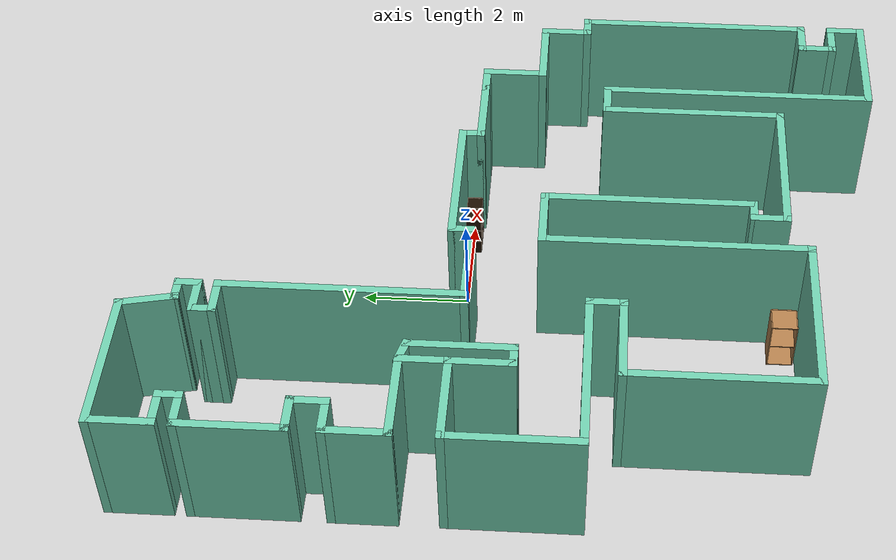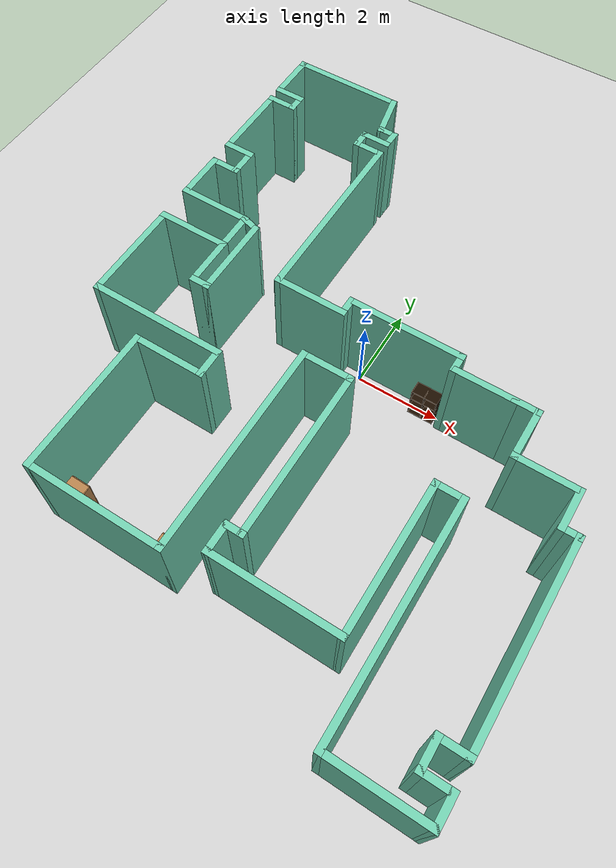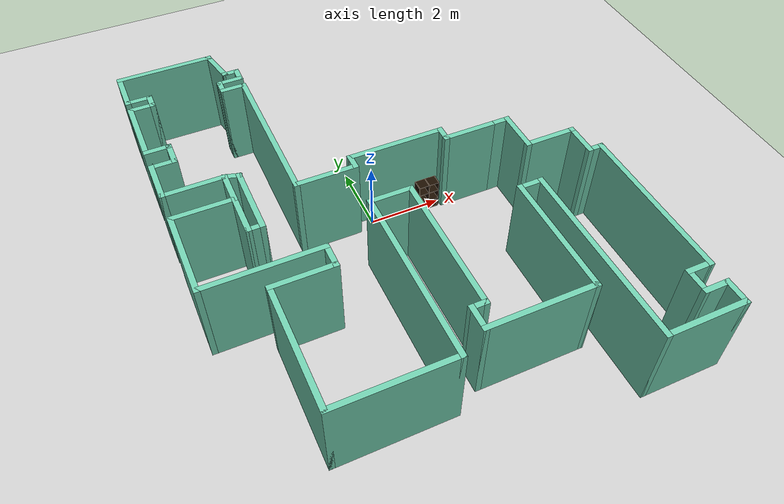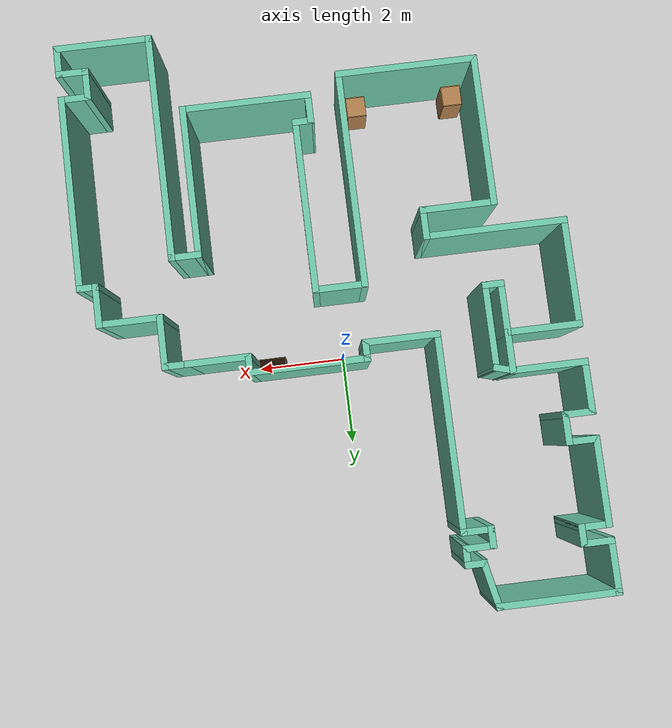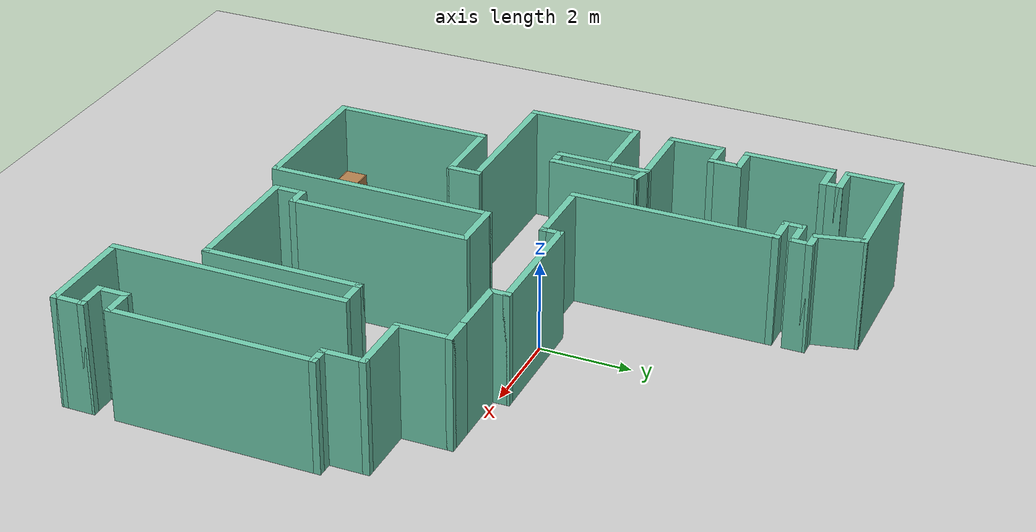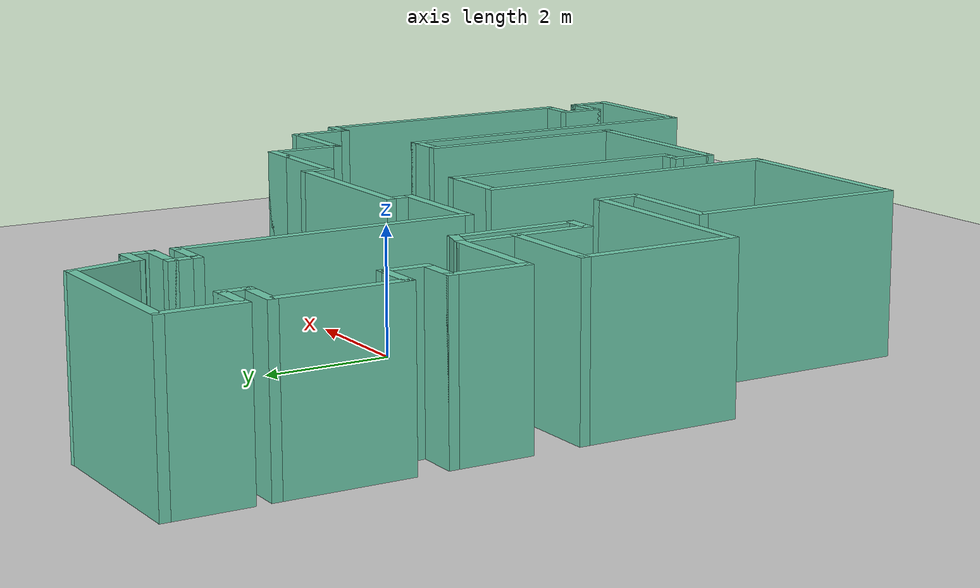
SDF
<sdf version="1.6">
 <world name="default">
  <light name="sun" type="directional">
   <pose>0 0 10 0 -0 0</pose>
   <diffuse>0.8 0.8 0.8 1</diffuse>
   <specular>0.2 0.2 0.2 1</specular>
   <attenuation>
    <range>1000</range>
    <constant>0.9</constant>
    <linear>0.01</linear>
    <quadratic>0.001</quadratic>
   </attenuation>
   <direction>-0.5 0.1 -0.9</direction>
  </light>
  <model name="ground_plane">
   <static>1</static>
   <link name="link">
    <collision name="collision">
     <geometry><plane><normal>0 0 1</normal><size>100 100</size></plane></geometry>
     <surface>
      <contact><collide_bitmask>65535</collide_bitmask></contact>
      <friction><ode><mu>100</mu><mu2>50</mu2></ode></friction>
     </surface>
    </collision>
    <visual name="visual">
     <cast_shadows>0</cast_shadows>
     <geometry><plane><normal>0 0 1</normal><size>100 100</size></plane></geometry>
     <material>
      <script><uri>file://media/materials/scripts/gazebo.material</uri><name>Gazebo/Grey</name></script>
     </material>
    </visual>
   </link>
  </model>
  <gravity>0 0 -9.8</gravity>
  <magnetic_field>6e-06 2.3e-05 -4.2e-05</magnetic_field>
  <atmosphere type="adiabatic"/>
  <physics name="default_physics" default="0" type="ode">
   <max_step_size>0.001</max_step_size>
   <real_time_factor>1</real_time_factor>
   <real_time_update_rate>1000</real_time_update_rate>
  </physics>
  <scene><ambient>0.4 0.4 0.4 1</ambient><background>0.7 0.7 0.7 1</background><shadows>1</shadows></scene>
  <audio><device>default</device></audio>
  <spherical_coordinates>
   <surface_model>EARTH_WGS84</surface_model>
   <latitude_deg>0</latitude_deg>
   <longitude_deg>0</longitude_deg>
   <elevation>0</elevation>
   <heading_deg>0</heading_deg>
  </spherical_coordinates>
  <model name="map_79">
   <pose>0.209254 -0.878688 0 0 -0 0</pose>
   <link name="Wall_0">
    <collision name="Wall_0_Collision">
     <geometry><box><size>2.75 0.15 2.5</size></box></geometry>
     <pose>0 0 1.25 0 -0 0</pose>
    </collision>
    <visual name="Wall_0_Visual">
     <pose>0 0 1.25 0 -0 0</pose>
     <geometry><box><size>2.75 0.15 2.5</size></box></geometry>
     <material>
      <script><uri>file://media/materials/scripts/gazebo.material</uri><name>Gazebo/Grey</name></script>
      <ambient>0.435294 0.796078 0.67451 1</ambient>
     </material>
     <meta><layer>0</layer></meta>
    </visual>
    <pose>-4.15 6.74308 0 0 -0 3.14159</pose>
   </link>
   <link name="Wall_1">
    <collision name="Wall_1_Collision">
     <geometry><box><size>1.25 0.15 2.5</size></box></geometry>
     <pose>0 0 1.25 0 -0 0</pose>
    </collision>
    <visual name="Wall_1_Visual">
     <pose>0 0 1.25 0 -0 0</pose>
     <geometry><box><size>1.25 0.15 2.5</size></box></geometry>
     <material>
      <script><uri>file://media/materials/scripts/gazebo.material</uri><name>Gazebo/Grey</name></script>
      <ambient>0.435294 0.796078 0.67451 1</ambient>
     </material>
     <meta><layer>0</layer></meta>
    </visual>
    <pose>-5.45 6.19308 0 0 -0 -1.5708</pose>
   </link>
   <link name="Wall_10">
    <collision name="Wall_10_Collision">
     <geometry><box><size>1.75 0.15 2.5</size></box></geometry>
     <pose>0 0 1.25 0 -0 0</pose>
    </collision>
    <visual name="Wall_10_Visual">
     <pose>0 0 1.25 0 -0 0</pose>
     <geometry><box><size>1.75 0.15 2.5</size></box></geometry>
     <material>
      <script><uri>file://media/materials/scripts/gazebo.material</uri><name>Gazebo/Grey</name></script>
      <ambient>0.435294 0.796078 0.67451 1</ambient>
     </material>
     <meta><layer>0</layer></meta>
    </visual>
    <pose>-4.65 1.74308 0 0 -0 0</pose>
   </link>
   <link name="Wall_11">
    <collision name="Wall_11_Collision">
     <geometry><box><size>1 0.15 2.5</size></box></geometry>
     <pose>0 0 1.25 0 -0 0</pose>
    </collision>
    <visual name="Wall_11_Visual">
     <pose>0 0 1.25 0 -0 0</pose>
     <geometry><box><size>1 0.15 2.5</size></box></geometry>
     <material>
      <script><uri>file://media/materials/scripts/gazebo.material</uri><name>Gazebo/Grey</name></script>
      <ambient>0.435294 0.796078 0.67451 1</ambient>
     </material>
     <meta><layer>0</layer></meta>
    </visual>
    <pose>-3.85 1.31808 0 0 -0 -1.5708</pose>
   </link>
   <link name="Wall_12">
    <collision name="Wall_12_Collision">
     <geometry><box><size>1.75 0.15 2.5</size></box></geometry>
     <pose>0 0 1.25 0 -0 0</pose>
    </collision>
    <visual name="Wall_12_Visual">
     <pose>0 0 1.25 0 -0 0</pose>
     <geometry><box><size>1.75 0.15 2.5</size></box></geometry>
     <material>
      <script><uri>file://media/materials/scripts/gazebo.material</uri><name>Gazebo/Grey</name></script>
      <ambient>0.435294 0.796078 0.67451 1</ambient>
     </material>
     <meta><layer>0</layer></meta>
    </visual>
    <pose>-4.65 0.893079 0 0 -0 3.14159</pose>
   </link>
   <link name="Wall_13">
    <collision name="Wall_13_Collision">
     <geometry><box><size>2.5 0.15 2.5</size></box></geometry>
     <pose>0 0 1.25 0 -0 0</pose>
    </collision>
    <visual name="Wall_13_Visual">
     <pose>0 0 1.25 0 -0 0</pose>
     <geometry><box><size>2.5 0.15 2.5</size></box></geometry>
     <material>
      <script><uri>file://media/materials/scripts/gazebo.material</uri><name>Gazebo/Grey</name></script>
      <ambient>0.435294 0.796078 0.67451 1</ambient>
     </material>
     <meta><layer>0</layer></meta>
    </visual>
    <pose>-5.45 -0.281921 0 0 -0 -1.5708</pose>
   </link>
   <link name="Wall_14">
    <collision name="Wall_14_Collision">
     <geometry><box><size>3.25 0.15 2.5</size></box></geometry>
     <pose>0 0 1.25 0 -0 0</pose>
    </collision>
    <visual name="Wall_14_Visual">
     <pose>0 0 1.25 0 -0 0</pose>
     <geometry><box><size>3.25 0.15 2.5</size></box></geometry>
     <material>
      <script><uri>file://media/materials/scripts/gazebo.material</uri><name>Gazebo/Grey</name></script>
      <ambient>0.435294 0.796078 0.67451 1</ambient>
     </material>
     <meta><layer>0</layer></meta>
    </visual>
    <pose>-3.9 -1.45692 0 0 -0 0</pose>
   </link>
   <link name="Wall_15">
    <collision name="Wall_15_Collision">
     <geometry><box><size>0.75 0.15 2.5</size></box></geometry>
     <pose>0 0 1.25 0 -0 0</pose>
    </collision>
    <visual name="Wall_15_Visual">
     <pose>0 0 1.25 0 -0 0</pose>
     <geometry><box><size>0.75 0.15 2.5</size></box></geometry>
     <material>
      <script><uri>file://media/materials/scripts/gazebo.material</uri><name>Gazebo/Grey</name></script>
      <ambient>0.435294 0.796078 0.67451 1</ambient>
     </material>
     <meta><layer>0</layer></meta>
    </visual>
    <pose>-2.35 -1.75692 0 0 -0 -1.5708</pose>
   </link>
   <link name="Wall_16">
    <collision name="Wall_16_Collision">
     <geometry><box><size>1.75 0.15 2.5</size></box></geometry>
     <pose>0 0 1.25 0 -0 0</pose>
    </collision>
    <visual name="Wall_16_Visual">
     <pose>0 0 1.25 0 -0 0</pose>
     <geometry><box><size>1.75 0.15 2.5</size></box></geometry>
     <material>
      <script><uri>file://media/materials/scripts/gazebo.material</uri><name>Gazebo/Grey</name></script>
      <ambient>0.435294 0.796078 0.67451 1</ambient>
     </material>
     <meta><layer>0</layer></meta>
    </visual>
    <pose>-3.15 -2.05692 0 0 -0 3.14159</pose>
   </link>
   <link name="Wall_17">
    <collision name="Wall_17_Collision">
     <geometry><box><size>3.5 0.15 2.5</size></box></geometry>
     <pose>0 0 1.25 0 -0 0</pose>
    </collision>
    <visual name="Wall_17_Visual">
     <pose>0 0 1.25 0 -0 0</pose>
     <geometry><box><size>3.5 0.15 2.5</size></box></geometry>
     <material>
      <script><uri>file://media/materials/scripts/gazebo.material</uri><name>Gazebo/Grey</name></script>
      <ambient>0.435294 0.796078 0.67451 1</ambient>
     </material>
     <meta><layer>0</layer></meta>
    </visual>
    <pose>-3.95 -3.73192 0 0 -0 -1.5708</pose>
   </link>
   <link name="Wall_18">
    <collision name="Wall_18_Collision">
     <geometry><box><size>3.25 0.15 2.5</size></box></geometry>
     <pose>0 0 1.25 0 -0 0</pose>
    </collision>
    <visual name="Wall_18_Visual">
     <pose>0 0 1.25 0 -0 0</pose>
     <geometry><box><size>3.25 0.15 2.5</size></box></geometry>
     <material>
      <script><uri>file://media/materials/scripts/gazebo.material</uri><name>Gazebo/Grey</name></script>
      <ambient>0.435294 0.796078 0.67451 1</ambient>
     </material>
     <meta><layer>0</layer></meta>
    </visual>
    <pose>-2.4 -5.40692 0 0 -0 0</pose>
   </link>
   <link name="Wall_19">
    <collision name="Wall_19_Collision">
     <geometry><box><size>5 0.15 2.5</size></box></geometry>
     <pose>0 0 1.25 0 -0 0</pose>
    </collision>
    <visual name="Wall_19_Visual">
     <pose>0 0 1.25 0 -0 0</pose>
     <geometry><box><size>5 0.15 2.5</size></box></geometry>
     <material>
      <script><uri>file://media/materials/scripts/gazebo.material</uri><name>Gazebo/Grey</name></script>
      <ambient>0.435294 0.796078 0.67451 1</ambient>
     </material>
     <meta><layer>0</layer></meta>
    </visual>
    <pose>-0.85 -2.98192 0 0 -0 1.5708</pose>
   </link>
   <link name="Wall_2">
    <collision name="Wall_2_Collision">
     <geometry><box><size>0.75 0.15 2.5</size></box></geometry>
     <pose>0 0 1.25 0 -0 0</pose>
    </collision>
    <visual name="Wall_2_Visual">
     <pose>0 0 1.25 0 -0 0</pose>
     <geometry><box><size>0.75 0.15 2.5</size></box></geometry>
     <material>
      <script><uri>file://media/materials/scripts/gazebo.material</uri><name>Gazebo/Grey</name></script>
      <ambient>0.435294 0.796078 0.67451 1</ambient>
     </material>
     <meta><layer>0</layer></meta>
    </visual>
    <pose>-5.15 5.64308 0 0 -0 0</pose>
   </link>
   <link name="Wall_20">
    <collision name="Wall_20_Collision">
     <geometry><box><size>1.25 0.15 2.5</size></box></geometry>
     <pose>0 0 1.25 0 -0 0</pose>
    </collision>
    <visual name="Wall_20_Visual">
     <pose>0 0 1.25 0 -0 0</pose>
     <geometry><box><size>1.25 0.15 2.5</size></box></geometry>
     <material>
      <script><uri>file://media/materials/scripts/gazebo.material</uri><name>Gazebo/Grey</name></script>
      <ambient>0.435294 0.796078 0.67451 1</ambient>
     </material>
     <meta><layer>0</layer></meta>
    </visual>
    <pose>-0.3 -0.556921 0 0 -0 0</pose>
   </link>
   <link name="Wall_21">
    <collision name="Wall_21_Collision">
     <geometry><box><size>4 0.15 2.5</size></box></geometry>
     <pose>0 0 1.25 0 -0 0</pose>
    </collision>
    <visual name="Wall_21_Visual">
     <pose>0 0 1.25 0 -0 0</pose>
     <geometry><box><size>4 0.15 2.5</size></box></geometry>
     <material>
      <script><uri>file://media/materials/scripts/gazebo.material</uri><name>Gazebo/Grey</name></script>
      <ambient>0.435294 0.796078 0.67451 1</ambient>
     </material>
     <meta><layer>0</layer></meta>
    </visual>
    <pose>0.25 -2.48192 0 0 -0 -1.5708</pose>
   </link>
   <link name="Wall_22">
    <collision name="Wall_22_Collision">
     <geometry><box><size>0.5 0.15 2.5</size></box></geometry>
     <pose>0 0 1.25 0 -0 0</pose>
    </collision>
    <visual name="Wall_22_Visual">
     <pose>0 0 1.25 0 -0 0</pose>
     <geometry><box><size>0.5 0.15 2.5</size></box></geometry>
     <material>
      <script><uri>file://media/materials/scripts/gazebo.material</uri><name>Gazebo/Grey</name></script>
      <ambient>0.435294 0.796078 0.67451 1</ambient>
     </material>
     <meta><layer>0</layer></meta>
    </visual>
    <pose>0.075 -4.40692 0 0 -0 3.14159</pose>
   </link>
   <link name="Wall_23">
    <collision name="Wall_23_Collision">
     <geometry><box><size>0.75 0.15 2.5</size></box></geometry>
     <pose>0 0 1.25 0 -0 0</pose>
    </collision>
    <visual name="Wall_23_Visual">
     <pose>0 0 1.25 0 -0 0</pose>
     <geometry><box><size>0.75 0.15 2.5</size></box></geometry>
     <material>
      <script><uri>file://media/materials/scripts/gazebo.material</uri><name>Gazebo/Grey</name></script>
      <ambient>0.435294 0.796078 0.67451 1</ambient>
     </material>
     <meta><layer>0</layer></meta>
    </visual>
    <pose>-0.1 -4.70692 0 0 -0 -1.5708</pose>
   </link>
   <link name="Wall_24">
    <collision name="Wall_24_Collision">
     <geometry><box><size>3 0.15 2.5</size></box></geometry>
     <pose>0 0 1.25 0 -0 0</pose>
    </collision>
    <visual name="Wall_24_Visual">
     <pose>0 0 1.25 0 -0 0</pose>
     <geometry><box><size>3 0.15 2.5</size></box></geometry>
     <material>
      <script><uri>file://media/materials/scripts/gazebo.material</uri><name>Gazebo/Grey</name></script>
      <ambient>0.435294 0.796078 0.67451 1</ambient>
     </material>
     <meta><layer>0</layer></meta>
    </visual>
    <pose>1.325 -5.00692 0 0 -0 0</pose>
   </link>
   <link name="Wall_25">
    <collision name="Wall_25_Collision">
     <geometry><box><size>3.5 0.15 2.5</size></box></geometry>
     <pose>0 0 1.25 0 -0 0</pose>
    </collision>
    <visual name="Wall_25_Visual">
     <pose>0 0 1.25 0 -0 0</pose>
     <geometry><box><size>3.5 0.15 2.5</size></box></geometry>
     <material>
      <script><uri>file://media/materials/scripts/gazebo.material</uri><name>Gazebo/Grey</name></script>
      <ambient>0.435294 0.796078 0.67451 1</ambient>
     </material>
     <meta><layer>0</layer></meta>
    </visual>
    <pose>2.75 -3.33192 0 0 -0 1.5708</pose>
   </link>
   <link name="Wall_26">
    <collision name="Wall_26_Collision">
     <geometry><box><size>0.75 0.15 2.5</size></box></geometry>
     <pose>0 0 1.25 0 -0 0</pose>
    </collision>
    <visual name="Wall_26_Visual">
     <pose>0 0 1.25 0 -0 0</pose>
     <geometry><box><size>0.75 0.15 2.5</size></box></geometry>
     <material>
      <script><uri>file://media/materials/scripts/gazebo.material</uri><name>Gazebo/Grey</name></script>
      <ambient>0.435294 0.796078 0.67451 1</ambient>
     </material>
     <meta><layer>0</layer></meta>
    </visual>
    <pose>3.05 -1.65692 0 0 -0 0</pose>
   </link>
   <link name="Wall_27">
    <collision name="Wall_27_Collision">
     <geometry><box><size>5.25 0.15 2.5</size></box></geometry>
     <pose>0 0 1.25 0 -0 0</pose>
    </collision>
    <visual name="Wall_27_Visual">
     <pose>0 0 1.25 0 -0 0</pose>
     <geometry><box><size>5.25 0.15 2.5</size></box></geometry>
     <material>
      <script><uri>file://media/materials/scripts/gazebo.material</uri><name>Gazebo/Grey</name></script>
      <ambient>0.435294 0.796078 0.67451 1</ambient>
     </material>
     <meta><layer>0</layer></meta>
    </visual>
    <pose>3.35 -4.20692 0 0 -0 -1.5708</pose>
   </link>
   <link name="Wall_3">
    <collision name="Wall_3_Collision">
     <geometry><box><size>0.5 0.15 2.5</size></box></geometry>
     <pose>0 0 1.25 0 -0 0</pose>
    </collision>
    <visual name="Wall_3_Visual">
     <pose>0 0 1.25 0 -0 0</pose>
     <geometry><box><size>0.5 0.15 2.5</size></box></geometry>
     <material>
      <script><uri>file://media/materials/scripts/gazebo.material</uri><name>Gazebo/Grey</name></script>
      <ambient>0.435294 0.796078 0.67451 1</ambient>
     </material>
     <meta><layer>0</layer></meta>
    </visual>
    <pose>-4.85 5.46808 0 0 -0 -1.5708</pose>
   </link>
   <link name="Wall_39">
    <collision name="Wall_39_Collision">
     <geometry><box><size>1.5 0.15 2.5</size></box></geometry>
     <pose>0 0 1.25 0 -0 0</pose>
    </collision>
    <visual name="Wall_39_Visual">
     <pose>0 0 1.25 0 -0 0</pose>
     <geometry><box><size>1.5 0.15 2.5</size></box></geometry>
     <material>
      <script><uri>file://media/materials/scripts/gazebo.material</uri><name>Gazebo/Grey</name></script>
      <ambient>0.435294 0.796078 0.67451 1</ambient>
     </material>
     <meta><layer>0</layer></meta>
    </visual>
    <pose>2.575 0.743079 0 0 -0 3.14159</pose>
   </link>
   <link name="Wall_4">
    <collision name="Wall_4_Collision">
     <geometry><box><size>0.75 0.15 2.5</size></box></geometry>
     <pose>0 0 1.25 0 -0 0</pose>
    </collision>
    <visual name="Wall_4_Visual">
     <pose>0 0 1.25 0 -0 0</pose>
     <geometry><box><size>0.75 0.15 2.5</size></box></geometry>
     <material>
      <script><uri>file://media/materials/scripts/gazebo.material</uri><name>Gazebo/Grey</name></script>
      <ambient>0.435294 0.796078 0.67451 1</ambient>
     </material>
     <meta><layer>0</layer></meta>
    </visual>
    <pose>-5.15 5.29308 0 0 -0 3.14159</pose>
   </link>
   <link name="Wall_40">
    <collision name="Wall_40_Collision">
     <geometry><box><size>0.5 0.15 2.5</size></box></geometry>
     <pose>0 0 1.25 0 -0 0</pose>
    </collision>
    <visual name="Wall_40_Visual">
     <pose>0 0 1.25 0 -0 0</pose>
     <geometry><box><size>0.5 0.15 2.5</size></box></geometry>
     <material>
      <script><uri>file://media/materials/scripts/gazebo.material</uri><name>Gazebo/Grey</name></script>
      <ambient>0.435294 0.796078 0.67451 1</ambient>
     </material>
     <meta><layer>0</layer></meta>
    </visual>
    <pose>1.9 0.918079 0 0 -0 1.5708</pose>
   </link>
   <link name="Wall_41">
    <collision name="Wall_41_Collision">
     <geometry><box><size>2.75 0.15 2.5</size></box></geometry>
     <pose>0 0 1.25 0 -0 0</pose>
    </collision>
    <visual name="Wall_41_Visual">
     <pose>0 0 1.25 0 -0 0</pose>
     <geometry><box><size>2.75 0.15 2.5</size></box></geometry>
     <material>
      <script><uri>file://media/materials/scripts/gazebo.material</uri><name>Gazebo/Grey</name></script>
      <ambient>0.435294 0.796078 0.67451 1</ambient>
     </material>
     <meta><layer>0</layer></meta>
    </visual>
    <pose>0.6 1.09308 0 0 -0 3.14159</pose>
   </link>
   <link name="Wall_49">
    <collision name="Wall_49_Collision">
     <geometry><box><size>2.25 0.15 2.5</size></box></geometry>
     <pose>0 0 1.25 0 -0 0</pose>
    </collision>
    <visual name="Wall_49_Visual">
     <pose>0 0 1.25 0 -0 0</pose>
     <geometry><box><size>2.25 0.15 2.5</size></box></geometry>
     <material>
      <script><uri>file://media/materials/scripts/gazebo.material</uri><name>Gazebo/Grey</name></script>
      <ambient>0.435294 0.796078 0.67451 1</ambient>
     </material>
     <meta><layer>0</layer></meta>
    </visual>
    <pose>4.4 -6.75692 0 0 -0 0</pose>
   </link>
   <link name="Wall_5">
    <collision name="Wall_5_Collision">
     <geometry><box><size>2 0.15 2.5</size></box></geometry>
     <pose>0 0 1.25 0 -0 0</pose>
    </collision>
    <visual name="Wall_5_Visual">
     <pose>0 0 1.25 0 -0 0</pose>
     <geometry><box><size>2 0.15 2.5</size></box></geometry>
     <material>
      <script><uri>file://media/materials/scripts/gazebo.material</uri><name>Gazebo/Grey</name></script>
      <ambient>0.435294 0.796078 0.67451 1</ambient>
     </material>
     <meta><layer>0</layer></meta>
    </visual>
    <pose>-5.45 4.36808 0 0 -0 -1.5708</pose>
   </link>
   <link name="Wall_50">
    <collision name="Wall_50_Collision">
     <geometry><box><size>0.75 0.15 2.5</size></box></geometry>
     <pose>0 0 1.25 0 -0 0</pose>
    </collision>
    <visual name="Wall_50_Visual">
     <pose>0 0 1.25 0 -0 0</pose>
     <geometry><box><size>0.75 0.15 2.5</size></box></geometry>
     <material>
      <script><uri>file://media/materials/scripts/gazebo.material</uri><name>Gazebo/Grey</name></script>
      <ambient>0.435294 0.796078 0.67451 1</ambient>
     </material>
     <meta><layer>0</layer></meta>
    </visual>
    <pose>5.45 -6.45692 0 0 -0 1.5708</pose>
   </link>
   <link name="Wall_51">
    <collision name="Wall_51_Collision">
     <geometry><box><size>0.75 0.15 2.5</size></box></geometry>
     <pose>0 0 1.25 0 -0 0</pose>
    </collision>
    <visual name="Wall_51_Visual">
     <pose>0 0 1.25 0 -0 0</pose>
     <geometry><box><size>0.75 0.15 2.5</size></box></geometry>
     <material>
      <script><uri>file://media/materials/scripts/gazebo.material</uri><name>Gazebo/Grey</name></script>
      <ambient>0.435294 0.796078 0.67451 1</ambient>
     </material>
     <meta><layer>0</layer></meta>
    </visual>
    <pose>5.15 -6.15692 0 0 -0 3.14159</pose>
   </link>
   <link name="Wall_52">
    <collision name="Wall_52_Collision">
     <geometry><box><size>0.75 0.15 2.5</size></box></geometry>
     <pose>0 0 1.25 0 -0 0</pose>
    </collision>
    <visual name="Wall_52_Visual">
     <pose>0 0 1.25 0 -0 0</pose>
     <geometry><box><size>0.75 0.15 2.5</size></box></geometry>
     <material>
      <script><uri>file://media/materials/scripts/gazebo.material</uri><name>Gazebo/Grey</name></script>
      <ambient>0.435294 0.796078 0.67451 1</ambient>
     </material>
     <meta><layer>0</layer></meta>
    </visual>
    <pose>4.85 -5.85692 0 0 -0 1.5708</pose>
   </link>
   <link name="Wall_53">
    <collision name="Wall_53_Collision">
     <geometry><box><size>0.75 0.15 2.5</size></box></geometry>
     <pose>0 0 1.25 0 -0 0</pose>
    </collision>
    <visual name="Wall_53_Visual">
     <pose>0 0 1.25 0 -0 0</pose>
     <geometry><box><size>0.75 0.15 2.5</size></box></geometry>
     <material>
      <script><uri>file://media/materials/scripts/gazebo.material</uri><name>Gazebo/Grey</name></script>
      <ambient>0.435294 0.796078 0.67451 1</ambient>
     </material>
     <meta><layer>0</layer></meta>
    </visual>
    <pose>5.15 -5.55692 0 0 -0 0</pose>
   </link>
   <link name="Wall_54">
    <collision name="Wall_54_Collision">
     <geometry><box><size>4.5 0.15 2.5</size></box></geometry>
     <pose>0 0 1.25 0 -0 0</pose>
    </collision>
    <visual name="Wall_54_Visual">
     <pose>0 0 1.25 0 -0 0</pose>
     <geometry><box><size>4.5 0.15 2.5</size></box></geometry>
     <material>
      <script><uri>file://media/materials/scripts/gazebo.material</uri><name>Gazebo/Grey</name></script>
      <ambient>0.435294 0.796078 0.67451 1</ambient>
     </material>
     <meta><layer>0</layer></meta>
    </visual>
    <pose>5.45 -3.38192 0 0 -0 1.5708</pose>
   </link>
   <link name="Wall_55">
    <collision name="Wall_55_Collision">
     <geometry><box><size>0.5 0.15 2.5</size></box></geometry>
     <pose>0 0 1.25 0 -0 0</pose>
    </collision>
    <visual name="Wall_55_Visual">
     <pose>0 0 1.25 0 -0 0</pose>
     <geometry><box><size>0.5 0.15 2.5</size></box></geometry>
     <material>
      <script><uri>file://media/materials/scripts/gazebo.material</uri><name>Gazebo/Grey</name></script>
      <ambient>0.435294 0.796078 0.67451 1</ambient>
     </material>
     <meta><layer>0</layer></meta>
    </visual>
    <pose>5.275 -1.20692 0 0 -0 3.14159</pose>
   </link>
   <link name="Wall_6">
    <collision name="Wall_6_Collision">
     <geometry><box><size>0.75 0.15 2.5</size></box></geometry>
     <pose>0 0 1.25 0 -0 0</pose>
    </collision>
    <visual name="Wall_6_Visual">
     <pose>0 0 1.25 0 -0 0</pose>
     <geometry><box><size>0.75 0.15 2.5</size></box></geometry>
     <material>
      <script><uri>file://media/materials/scripts/gazebo.material</uri><name>Gazebo/Grey</name></script>
      <ambient>0.435294 0.796078 0.67451 1</ambient>
     </material>
     <meta><layer>0</layer></meta>
    </visual>
    <pose>-5.15 3.44308 0 0 -0 0</pose>
   </link>
   <link name="Wall_63">
    <collision name="Wall_63_Collision">
     <geometry><box><size>0.5 0.15 2.5</size></box></geometry>
     <pose>0 0 1.25 0 -0 0</pose>
    </collision>
    <visual name="Wall_63_Visual">
     <pose>0 0 1.25 0 -0 0</pose>
     <geometry><box><size>0.5 0.15 2.5</size></box></geometry>
     <material>
      <script><uri>file://media/materials/scripts/gazebo.material</uri><name>Gazebo/Grey</name></script>
      <ambient>0.435294 0.796078 0.67451 1</ambient>
     </material>
     <meta><layer>0</layer></meta>
    </visual>
    <pose>-0.7 0.918079 0 0 -0 -1.5708</pose>
   </link>
   <link name="Wall_64">
    <collision name="Wall_64_Collision">
     <geometry><box><size>1.75 0.15 2.5</size></box></geometry>
     <pose>0 0 1.25 0 -0 0</pose>
    </collision>
    <visual name="Wall_64_Visual">
     <pose>0 0 1.25 0 -0 0</pose>
     <geometry><box><size>1.75 0.15 2.5</size></box></geometry>
     <material>
      <script><uri>file://media/materials/scripts/gazebo.material</uri><name>Gazebo/Grey</name></script>
      <ambient>0.435294 0.796078 0.67451 1</ambient>
     </material>
     <meta><layer>0</layer></meta>
    </visual>
    <pose>-1.5 0.743079 0 0 -0 3.14159</pose>
   </link>
   <link name="Wall_65">
    <collision name="Wall_65_Collision">
     <geometry><box><size>4.5 0.15 2.5</size></box></geometry>
     <pose>0 0 1.25 0 -0 0</pose>
    </collision>
    <visual name="Wall_65_Visual">
     <pose>0 0 1.25 0 -0 0</pose>
     <geometry><box><size>4.5 0.15 2.5</size></box></geometry>
     <material>
      <script><uri>file://media/materials/scripts/gazebo.material</uri><name>Gazebo/Grey</name></script>
      <ambient>0.435294 0.796078 0.67451 1</ambient>
     </material>
     <meta><layer>0</layer></meta>
    </visual>
    <pose>-2.3 2.91808 0 0 -0 1.5708</pose>
   </link>
   <link name="Wall_66">
    <collision name="Wall_66_Collision">
     <geometry><box><size>0.75 0.15 2.5</size></box></geometry>
     <pose>0 0 1.25 0 -0 0</pose>
    </collision>
    <visual name="Wall_66_Visual">
     <pose>0 0 1.25 0 -0 0</pose>
     <geometry><box><size>0.75 0.15 2.5</size></box></geometry>
     <material>
      <script><uri>file://media/materials/scripts/gazebo.material</uri><name>Gazebo/Grey</name></script>
      <ambient>0.435294 0.796078 0.67451 1</ambient>
     </material>
     <meta><layer>0</layer></meta>
    </visual>
    <pose>-2.6 5.09308 0 0 -0 3.14159</pose>
   </link>
   <link name="Wall_67">
    <collision name="Wall_67_Collision">
     <geometry><box><size>0.5 0.15 2.5</size></box></geometry>
     <pose>0 0 1.25 0 -0 0</pose>
    </collision>
    <visual name="Wall_67_Visual">
     <pose>0 0 1.25 0 -0 0</pose>
     <geometry><box><size>0.5 0.15 2.5</size></box></geometry>
     <material>
      <script><uri>file://media/materials/scripts/gazebo.material</uri><name>Gazebo/Grey</name></script>
      <ambient>0.435294 0.796078 0.67451 1</ambient>
     </material>
     <meta><layer>0</layer></meta>
    </visual>
    <pose>-2.9 5.26808 0 0 -0 1.5708</pose>
   </link>
   <link name="Wall_68">
    <collision name="Wall_68_Collision">
     <geometry><box><size>0.75 0.15 2.5</size></box></geometry>
     <pose>0 0 1.25 0 -0 0</pose>
    </collision>
    <visual name="Wall_68_Visual">
     <pose>0 0 1.25 0 -0 0</pose>
     <geometry><box><size>0.75 0.15 2.5</size></box></geometry>
     <material>
      <script><uri>file://media/materials/scripts/gazebo.material</uri><name>Gazebo/Grey</name></script>
      <ambient>0.435294 0.796078 0.67451 1</ambient>
     </material>
     <meta><layer>0</layer></meta>
    </visual>
    <pose>-2.6 5.44308 0 0 -0 0</pose>
   </link>
   <link name="Wall_69">
    <collision name="Wall_69_Collision">
     <geometry><box><size>0.5 0.15 2.5</size></box></geometry>
     <pose>0 0 1.25 0 -0 0</pose>
    </collision>
    <visual name="Wall_69_Visual">
     <pose>0 0 1.25 0 -0 0</pose>
     <geometry><box><size>0.5 0.15 2.5</size></box></geometry>
     <material>
      <script><uri>file://media/materials/scripts/gazebo.material</uri><name>Gazebo/Grey</name></script>
      <ambient>0.435294 0.796078 0.67451 1</ambient>
     </material>
     <meta><layer>0</layer></meta>
    </visual>
    <pose>-2.3 5.61808 0 0 -0 1.5708</pose>
   </link>
   <link name="Wall_7">
    <collision name="Wall_7_Collision">
     <geometry><box><size>0.75 0.15 2.5</size></box></geometry>
     <pose>0 0 1.25 0 -0 0</pose>
    </collision>
    <visual name="Wall_7_Visual">
     <pose>0 0 1.25 0 -0 0</pose>
     <geometry><box><size>0.75 0.15 2.5</size></box></geometry>
     <material>
      <script><uri>file://media/materials/scripts/gazebo.material</uri><name>Gazebo/Grey</name></script>
      <ambient>0.435294 0.796078 0.67451 1</ambient>
     </material>
     <meta><layer>0</layer></meta>
    </visual>
    <pose>-4.85 3.14308 0 0 -0 -1.5708</pose>
   </link>
   <link name="Wall_70">
    <collision name="Wall_70_Collision">
     <geometry><box><size>0.5 0.15 2.5</size></box></geometry>
     <pose>0 0 1.25 0 -0 0</pose>
    </collision>
    <visual name="Wall_70_Visual">
     <pose>0 0 1.25 0 -0 0</pose>
     <geometry><box><size>0.5 0.15 2.5</size></box></geometry>
     <material>
      <script><uri>file://media/materials/scripts/gazebo.material</uri><name>Gazebo/Grey</name></script>
      <ambient>0.435294 0.796078 0.67451 1</ambient>
     </material>
     <meta><layer>0</layer></meta>
    </visual>
    <pose>-2.475 5.79308 0 0 -0 3.14159</pose>
   </link>
   <link name="Wall_73">
    <collision name="Wall_73_Collision">
     <geometry><box><size>1.12082 0.15 2.5</size></box></geometry>
     <pose>0 0 1.25 0 -0 0</pose>
    </collision>
    <visual name="Wall_73_Visual">
     <pose>0 0 1.25 0 -0 0</pose>
     <geometry><box><size>1.12082 0.15 2.5</size></box></geometry>
     <material>
      <script><uri>file://media/materials/scripts/gazebo.material</uri><name>Gazebo/Grey</name></script>
      <ambient>0.435294 0.796078 0.67451 1</ambient>
     </material>
     <meta><layer>0</layer></meta>
    </visual>
    <pose>-2.75 6.26808 0 0 -0 -1.3633</pose>
   </link>
   <link name="Wall_75">
    <collision name="Wall_75_Collision">
     <geometry><box><size>1 0.15 2.5</size></box></geometry>
     <pose>0 0 1.25 0 -0 0</pose>
    </collision>
    <visual name="Wall_75_Visual">
     <pose>0 0 1.25 0 -0 0</pose>
     <geometry><box><size>1 0.15 2.5</size></box></geometry>
     <material>
      <script><uri>file://media/materials/scripts/gazebo.material</uri><name>Gazebo/Grey</name></script>
      <ambient>0.435294 0.796078 0.67451 1</ambient>
     </material>
     <meta><layer>0</layer></meta>
    </visual>
    <pose>5.1 -0.781921 0 0 -0 1.5708</pose>
   </link>
   <link name="Wall_76">
    <collision name="Wall_76_Collision">
     <geometry><box><size>1.5 0.15 2.5</size></box></geometry>
     <pose>0 0 1.25 0 -0 0</pose>
    </collision>
    <visual name="Wall_76_Visual">
     <pose>0 0 1.25 0 -0 0</pose>
     <geometry><box><size>1.5 0.15 2.5</size></box></geometry>
     <material>
      <script><uri>file://media/materials/scripts/gazebo.material</uri><name>Gazebo/Grey</name></script>
      <ambient>0.435294 0.796078 0.67451 1</ambient>
     </material>
     <meta><layer>0</layer></meta>
    </visual>
    <pose>4.425 -0.356921 0 0 -0 3.14159</pose>
   </link>
   <link name="Wall_77">
    <collision name="Wall_77_Collision">
     <geometry><box><size>1.25 0.15 2.5</size></box></geometry>
     <pose>0 0 1.25 0 -0 0</pose>
    </collision>
    <visual name="Wall_77_Visual">
     <pose>0 0 1.25 0 -0 0</pose>
     <geometry><box><size>1.25 0.15 2.5</size></box></geometry>
     <material>
      <script><uri>file://media/materials/scripts/gazebo.material</uri><name>Gazebo/Grey</name></script>
      <ambient>0.435294 0.796078 0.67451 1</ambient>
     </material>
     <meta><layer>0</layer></meta>
    </visual>
    <pose>3.75 0.193079 0 0 -0 1.5708</pose>
   </link>
   <link name="Wall_78">
    <collision name="Wall_78_Collision">
     <geometry><box><size>0.65 0.15 2.5</size></box></geometry>
     <pose>0 0 1.25 0 -0 0</pose>
    </collision>
    <visual name="Wall_78_Visual">
     <pose>0 0 1.25 0 -0 0</pose>
     <geometry><box><size>0.65 0.15 2.5</size></box></geometry>
     <material>
      <script><uri>file://media/materials/scripts/gazebo.material</uri><name>Gazebo/Grey</name></script>
      <ambient>0.435294 0.796078 0.67451 1</ambient>
     </material>
     <meta><layer>0</layer></meta>
    </visual>
    <pose>3.5 0.743079 0 0 -0 3.14159</pose>
   </link>
   <link name="Wall_8">
    <collision name="Wall_8_Collision">
     <geometry><box><size>0.75 0.15 2.5</size></box></geometry>
     <pose>0 0 1.25 0 -0 0</pose>
    </collision>
    <visual name="Wall_8_Visual">
     <pose>0 0 1.25 0 -0 0</pose>
     <geometry><box><size>0.75 0.15 2.5</size></box></geometry>
     <material>
      <script><uri>file://media/materials/scripts/gazebo.material</uri><name>Gazebo/Grey</name></script>
      <ambient>0.435294 0.796078 0.67451 1</ambient>
     </material>
     <meta><layer>0</layer></meta>
    </visual>
    <pose>-5.15 2.84308 0 0 -0 3.14159</pose>
   </link>
   <link name="Wall_80">
    <collision name="Wall_80_Collision">
     <geometry><box><size>1.25 0.15 2.5</size></box></geometry>
     <pose>0 0 1.25 0 -0 0</pose>
    </collision>
    <visual name="Wall_80_Visual">
     <pose>0 0 1.25 0 -0 0</pose>
     <geometry><box><size>1.25 0.15 2.5</size></box></geometry>
     <material>
      <script><uri>file://media/materials/scripts/gazebo.material</uri><name>Gazebo/Grey</name></script>
      <ambient>0.435294 0.796078 0.67451 1</ambient>
     </material>
     <meta><layer>0</layer></meta>
    </visual>
    <pose>-3.85 0.343079 0 0 -0 -1.5708</pose>
   </link>
   <link name="Wall_81">
    <collision name="Wall_81_Collision">
     <geometry><box><size>0.5 0.15 2.5</size></box></geometry>
     <pose>0 0 1.25 0 -0 0</pose>
    </collision>
    <visual name="Wall_81_Visual">
     <pose>0 0 1.25 0 -0 0</pose>
     <geometry><box><size>0.5 0.15 2.5</size></box></geometry>
     <material>
      <script><uri>file://media/materials/scripts/gazebo.material</uri><name>Gazebo/Grey</name></script>
      <ambient>0.435294 0.796078 0.67451 1</ambient>
     </material>
     <meta><layer>0</layer></meta>
    </visual>
    <pose>-3.675 -0.206921 0 0 -0 0</pose>
   </link>
   <link name="Wall_82">
    <collision name="Wall_82_Collision">
     <geometry><box><size>2 0.15 2.5</size></box></geometry>
     <pose>0 0 1.25 0 -0 0</pose>
    </collision>
    <visual name="Wall_82_Visual">
     <pose>0 0 1.25 0 -0 0</pose>
     <geometry><box><size>2 0.15 2.5</size></box></geometry>
     <material>
      <script><uri>file://media/materials/scripts/gazebo.material</uri><name>Gazebo/Grey</name></script>
      <ambient>0.435294 0.796078 0.67451 1</ambient>
     </material>
     <meta><layer>0</layer></meta>
    </visual>
    <pose>-3.5 0.718079 0 0 -0 1.5708</pose>
   </link>
   <link name="Wall_83">
    <collision name="Wall_83_Collision">
     <geometry><box><size>0.514005 0.15 2.5</size></box></geometry>
     <pose>0 0 1.25 0 -0 0</pose>
    </collision>
    <visual name="Wall_83_Visual">
     <pose>0 0 1.25 0 -0 0</pose>
     <geometry><box><size>0.514005 0.15 2.5</size></box></geometry>
     <material>
      <script><uri>file://media/materials/scripts/gazebo.material</uri><name>Gazebo/Grey</name></script>
      <ambient>0.435294 0.796078 0.67451 1</ambient>
     </material>
     <meta><layer>0</layer></meta>
    </visual>
    <pose>-3.675 1.69308 0 0 -0 2.86329</pose>
   </link>
   <link name="Wall_9">
    <collision name="Wall_9_Collision">
     <geometry><box><size>1.25 0.15 2.5</size></box></geometry>
     <pose>0 0 1.25 0 -0 0</pose>
    </collision>
    <visual name="Wall_9_Visual">
     <pose>0 0 1.25 0 -0 0</pose>
     <geometry><box><size>1.25 0.15 2.5</size></box></geometry>
     <material>
      <script><uri>file://media/materials/scripts/gazebo.material</uri><name>Gazebo/Grey</name></script>
      <ambient>0.435294 0.796078 0.67451 1</ambient>
     </material>
     <meta><layer>0</layer></meta>
    </visual>
    <pose>-5.45 2.29308 0 0 -0 -1.5708</pose>
   </link>
   <static>1</static>
  </model>
  <model name="cabinet">
   <static>1</static>
   <link name="cabinet_bottom_plate">
    <inertial>
     <pose>0 0 -1 0 -0 0</pose>
     <inertia><ixx>2.05</ixx><ixy>0</ixy><ixz>0</ixz><iyy>2.05</iyy><iyz>0</iyz><izz>2.05</izz></inertia>
     <mass>25</mass>
    </inertial>
    <collision name="cabinet_bottom_plate_geom">
     <pose>0 0 0.01 0 -0 0</pose>
     <geometry><box><size>0.45 0.45 0.02</size></box></geometry>
    </collision>
    <visual name="cabinet_bottom_plate_geom_visual">
     <pose>0 0 0.01 0 -0 0</pose>
     <geometry><box><size>0.45 0.45 0.02</size></box></geometry>
     <material>
      <script><uri>file://media/materials/scripts/gazebo.material</uri><name>Gazebo/Wood</name></script>
     </material>
    </visual>
    <collision name="cabinet_bottom_plate_geom_cabinet_back_plate">
     <pose>0.235 0 0.51 0 -0 0</pose>
     <geometry><box><size>0.02 0.45 1.02</size></box></geometry>
    </collision>
    <visual name="cabinet_bottom_plate_geom_cabinet_back_plate_visual">
     <pose>0.235 0 0.51 0 -0 0</pose>
     <geometry><box><size>0.02 0.45 1.02</size></box></geometry>
     <material>
      <script><uri>file://media/materials/scripts/gazebo.material</uri><name>Gazebo/Wood</name></script>
     </material>
    </visual>
    <collision name="cabinet_bottom_plate_geom_cabinet_left_plate">
     <pose>0 0.235 0.51 0 -0 0</pose>
     <geometry><box><size>0.45 0.02 1.02</size></box></geometry>
    </collision>
    <visual name="cabinet_bottom_plate_geom_cabinet_left_plate_visual">
     <pose>0 0.235 0.51 0 -0 0</pose>
     <geometry><box><size>0.45 0.02 1.02</size></box></geometry>
     <material>
      <script><uri>file://media/materials/scripts/gazebo.material</uri><name>Gazebo/Wood</name></script>
     </material>
    </visual>
    <collision name="cabinet_bottom_plate_geom_cabinet_middle_plate">
     <pose>0 0 0.51 0 -0 0</pose>
     <geometry><box><size>0.45 0.45 0.02</size></box></geometry>
    </collision>
    <visual name="cabinet_bottom_plate_geom_cabinet_middle_plate_visual">
     <pose>0 0 0.51 0 -0 0</pose>
     <geometry><box><size>0.45 0.45 0.02</size></box></geometry>
     <material>
      <script><uri>file://media/materials/scripts/gazebo.material</uri><name>Gazebo/Wood</name></script>
     </material>
    </visual>
    <collision name="cabinet_bottom_plate_geom_cabinet_right_plate">
     <pose>0 -0.235 0.51 0 -0 0</pose>
     <geometry><box><size>0.45 0.02 1.02</size></box></geometry>
    </collision>
    <visual name="cabinet_bottom_plate_geom_cabinet_right_plate_visual">
     <pose>0 -0.235 0.51 0 -0 0</pose>
     <geometry><box><size>0.45 0.02 1.02</size></box></geometry>
     <material>
      <script><uri>file://media/materials/scripts/gazebo.material</uri><name>Gazebo/Wood</name></script>
     </material>
    </visual>
    <collision name="cabinet_bottom_plate_geom_cabinet_top_plate">
     <pose>0 0 1.01 0 -0 0</pose>
     <geometry><box><size>0.45 0.45 0.02</size></box></geometry>
    </collision>
    <visual name="cabinet_bottom_plate_geom_cabinet_top_plate_visual">
     <pose>0 0 1.01 0 -0 0</pose>
     <geometry><box><size>0.45 0.45 0.02</size></box></geometry>
     <material>
      <script><uri>file://media/materials/scripts/gazebo.material</uri><name>Gazebo/Wood</name></script>
     </material>
    </visual>
   </link>
   <pose>-3.35163 -5.93504 0 0 -0 0</pose>
  </model>
  <model name="cabinet_0">
   <static>1</static>
   <link name="cabinet_bottom_plate">
    <inertial>
     <pose>0 0 -1 0 -0 0</pose>
     <inertia><ixx>2.05</ixx><ixy>0</ixy><ixz>0</ixz><iyy>2.05</iyy><iyz>0</iyz><izz>2.05</izz></inertia>
     <mass>25</mass>
    </inertial>
    <collision name="cabinet_bottom_plate_geom">
     <pose>0 0 0.01 0 -0 0</pose>
     <geometry><box><size>0.45 0.45 0.02</size></box></geometry>
    </collision>
    <visual name="cabinet_bottom_plate_geom_visual">
     <pose>0 0 0.01 0 -0 0</pose>
     <geometry><box><size>0.45 0.45 0.02</size></box></geometry>
     <material>
      <script><uri>file://media/materials/scripts/gazebo.material</uri><name>Gazebo/Wood</name></script>
     </material>
    </visual>
    <collision name="cabinet_bottom_plate_geom_cabinet_back_plate">
     <pose>0.235 0 0.51 0 -0 0</pose>
     <geometry><box><size>0.02 0.45 1.02</size></box></geometry>
    </collision>
    <visual name="cabinet_bottom_plate_geom_cabinet_back_plate_visual">
     <pose>0.235 0 0.51 0 -0 0</pose>
     <geometry><box><size>0.02 0.45 1.02</size></box></geometry>
     <material>
      <script><uri>file://media/materials/scripts/gazebo.material</uri><name>Gazebo/Wood</name></script>
     </material>
    </visual>
    <collision name="cabinet_bottom_plate_geom_cabinet_left_plate">
     <pose>0 0.235 0.51 0 -0 0</pose>
     <geometry><box><size>0.45 0.02 1.02</size></box></geometry>
    </collision>
    <visual name="cabinet_bottom_plate_geom_cabinet_left_plate_visual">
     <pose>0 0.235 0.51 0 -0 0</pose>
     <geometry><box><size>0.45 0.02 1.02</size></box></geometry>
     <material>
      <script><uri>file://media/materials/scripts/gazebo.material</uri><name>Gazebo/Wood</name></script>
     </material>
    </visual>
    <collision name="cabinet_bottom_plate_geom_cabinet_middle_plate">
     <pose>0 0 0.51 0 -0 0</pose>
     <geometry><box><size>0.45 0.45 0.02</size></box></geometry>
    </collision>
    <visual name="cabinet_bottom_plate_geom_cabinet_middle_plate_visual">
     <pose>0 0 0.51 0 -0 0</pose>
     <geometry><box><size>0.45 0.45 0.02</size></box></geometry>
     <material>
      <script><uri>file://media/materials/scripts/gazebo.material</uri><name>Gazebo/Wood</name></script>
     </material>
    </visual>
    <collision name="cabinet_bottom_plate_geom_cabinet_right_plate">
     <pose>0 -0.235 0.51 0 -0 0</pose>
     <geometry><box><size>0.45 0.02 1.02</size></box></geometry>
    </collision>
    <visual name="cabinet_bottom_plate_geom_cabinet_right_plate_visual">
     <pose>0 -0.235 0.51 0 -0 0</pose>
     <geometry><box><size>0.45 0.02 1.02</size></box></geometry>
     <material>
      <script><uri>file://media/materials/scripts/gazebo.material</uri><name>Gazebo/Wood</name></script>
     </material>
    </visual>
    <collision name="cabinet_bottom_plate_geom_cabinet_top_plate">
     <pose>0 0 1.01 0 -0 0</pose>
     <geometry><box><size>0.45 0.45 0.02</size></box></geometry>
    </collision>
    <visual name="cabinet_bottom_plate_geom_cabinet_top_plate_visual">
     <pose>0 0 1.01 0 -0 0</pose>
     <geometry><box><size>0.45 0.45 0.02</size></box></geometry>
     <material>
      <script><uri>file://media/materials/scripts/gazebo.material</uri><name>Gazebo/Wood</name></script>
     </material>
    </visual>
   </link>
   <pose>-1.03489 -5.93581 0 0 -0 0</pose>
  </model>
  <model name="6_Cube_StorageE">
   <link name="Wall_0">
    <pose>0 0 0.01 0 -0 0</pose>
    <inertial>
     <mass>1.6201</mass>
     <inertia><ixx>0.0119</ixx><iyy>0.0631</iyy><izz>0.0513</izz><ixy>0</ixy><ixz>0</ixz><iyz>0</iyz></inertia>
    </inertial>
    <collision name="Wall_0_Collision"><geometry><box><size>0.616 0.296 0.02</size></box></geometry></collision>
    <visual name="Wall_0_Visual">
     <geometry><box><size>0.616 0.296 0.02</size></box></geometry>
     <material>
      <script><uri>file://media/materials/scripts/gazebo.material</uri><name>Gazebo/Grey</name></script>
      <ambient>0.105882 0.0509804 0 1</ambient>
     </material>
    </visual>
   </link>
   <joint name="0_2" type="fixed">
    <pose>-0.308 0 0 0 -0 0</pose>
    <parent>Wall_2</parent>
    <child>Wall_0</child>
    <axis>
     <xyz>1 0 0</xyz>
     <use_parent_model_frame>0</use_parent_model_frame>
     <limit><lower>-1e+16</lower><upper>1e+16</upper></limit>
    </axis>
   </joint>
   <joint name="0_12" type="fixed">
    <parent>Wall_12</parent>
    <child>Wall_0</child>
    <axis>
     <xyz>0 0 1</xyz>
     <use_parent_model_frame>0</use_parent_model_frame>
     <limit><lower>-1e+16</lower><upper>1e+16</upper></limit>
    </axis>
   </joint>
   <joint name="0_4" type="fixed">
    <pose>0.308 0 0 0 -0 0</pose>
    <parent>Wall_4</parent>
    <child>Wall_0</child>
    <axis>
     <xyz>1 0 0</xyz>
     <use_parent_model_frame>0</use_parent_model_frame>
     <limit><lower>-1e+16</lower><upper>1e+16</upper></limit>
    </axis>
   </joint>
   <link name="Wall_10">
    <pose>0 0 0.61 0 -0 0</pose>
    <inertial>
     <mass>1.6201</mass>
     <inertia><ixx>0.0119</ixx><iyy>0.0631</iyy><izz>0.0513</izz><ixy>0</ixy><ixz>0</ixz><iyz>0</iyz></inertia>
    </inertial>
    <collision name="Wall_10_Collision"><geometry><box><size>0.616 0.296 0.02</size></box></geometry></collision>
    <visual name="Wall_10_Visual">
     <geometry><box><size>0.616 0.296 0.02</size></box></geometry>
     <material>
      <script><uri>file://media/materials/scripts/gazebo.material</uri><name>Gazebo/Grey</name></script>
      <ambient>0.105882 0.0509804 0 1</ambient>
     </material>
    </visual>
   </link>
   <joint name="10_2" type="fixed">
    <pose>-0.308 0 0 0 -0 0</pose>
    <parent>Wall_2</parent>
    <child>Wall_10</child>
    <axis>
     <xyz>1 0 0</xyz>
     <use_parent_model_frame>0</use_parent_model_frame>
     <limit><lower>-1e+16</lower><upper>1e+16</upper></limit>
    </axis>
   </joint>
   <joint name="10_12" type="fixed">
    <parent>Wall_12</parent>
    <child>Wall_10</child>
    <axis>
     <xyz>0 0 1</xyz>
     <use_parent_model_frame>0</use_parent_model_frame>
     <limit><lower>-1e+16</lower><upper>1e+16</upper></limit>
    </axis>
   </joint>
   <joint name="10_4" type="fixed">
    <pose>0.308 0 0 0 -0 0</pose>
    <parent>Wall_4</parent>
    <child>Wall_10</child>
    <axis>
     <xyz>1 0 0</xyz>
     <use_parent_model_frame>0</use_parent_model_frame>
     <limit><lower>-1e+16</lower><upper>1e+16</upper></limit>
    </axis>
   </joint>
   <link name="Wall_12">
    <pose>0 0 0.4575 0 -0 0</pose>
    <inertial>
     <mass>2.4065</mass>
     <inertia><ixx>0.0177</ixx><iyy>0.1855</iyy><izz>0.168</izz><ixy>0</ixy><ixz>0</ixz><iyz>0</iyz></inertia>
    </inertial>
    <collision name="Wall_12_Collision"><geometry><box><size>0.02 0.296 0.915</size></box></geometry></collision>
    <visual name="Wall_12_Visual">
     <geometry><box><size>0.02 0.296 0.915</size></box></geometry>
     <material>
      <script><uri>file://media/materials/scripts/gazebo.material</uri><name>Gazebo/Grey</name></script>
      <ambient>0.105882 0.0509804 0 1</ambient>
     </material>
    </visual>
   </link>
   <link name="Wall_2">
    <pose>-0.298 0 0.4575 0 -0 0</pose>
    <inertial>
     <mass>2.4065</mass>
     <inertia><ixx>0.0177</ixx><iyy>0.1855</iyy><izz>0.168</izz><ixy>0</ixy><ixz>0</ixz><iyz>0</iyz></inertia>
    </inertial>
    <collision name="Wall_2_Collision"><geometry><box><size>0.02 0.296 0.915</size></box></geometry></collision>
    <visual name="Wall_2_Visual">
     <geometry><box><size>0.02 0.296 0.915</size></box></geometry>
     <material>
      <script><uri>file://media/materials/scripts/gazebo.material</uri><name>Gazebo/Grey</name></script>
      <ambient>0.105882 0.0509804 0 1</ambient>
     </material>
    </visual>
   </link>
   <link name="Wall_4">
    <pose>0.298 0 0.4575 0 -0 0</pose>
    <inertial>
     <mass>2.4065</mass>
     <inertia><ixx>0.0177</ixx><iyy>0.1855</iyy><izz>0.168</izz><ixy>0</ixy><ixz>0</ixz><iyz>0</iyz></inertia>
    </inertial>
    <collision name="Wall_4_Collision"><geometry><box><size>0.02 0.296 0.915</size></box></geometry></collision>
    <visual name="Wall_4_Visual">
     <geometry><box><size>0.02 0.296 0.915</size></box></geometry>
     <material>
      <script><uri>file://media/materials/scripts/gazebo.material</uri><name>Gazebo/Grey</name></script>
      <ambient>0.105882 0.0509804 0 1</ambient>
     </material>
    </visual>
   </link>
   <link name="Wall_6">
    <pose>0 0 0.905 0 -0 0</pose>
    <inertial>
     <mass>1.6201</mass>
     <inertia><ixx>0.0119</ixx><iyy>0.0631</iyy><izz>0.0513</izz><ixy>0</ixy><ixz>0</ixz><iyz>0</iyz></inertia>
    </inertial>
    <collision name="Wall_6_Collision"><geometry><box><size>0.616 0.296 0.02</size></box></geometry></collision>
    <visual name="Wall_6_Visual">
     <geometry><box><size>0.616 0.296 0.02</size></box></geometry>
     <material>
      <script><uri>file://media/materials/scripts/gazebo.material</uri><name>Gazebo/Grey</name></script>
      <ambient>0.105882 0.0509804 0 1</ambient>
     </material>
    </visual>
   </link>
   <joint name="6_2" type="fixed">
    <pose>-0.308 0 0 0 -0 0</pose>
    <parent>Wall_2</parent>
    <child>Wall_6</child>
    <axis>
     <xyz>2 0 0</xyz>
     <use_parent_model_frame>0</use_parent_model_frame>
     <limit><lower>-1e+16</lower><upper>1e+16</upper></limit>
    </axis>
   </joint>
   <joint name="6_12" type="fixed">
    <parent>Wall_12</parent>
    <child>Wall_6</child>
    <axis>
     <xyz>0 0 1</xyz>
     <use_parent_model_frame>0</use_parent_model_frame>
     <limit><lower>-1e+16</lower><upper>1e+16</upper></limit>
    </axis>
   </joint>
   <joint name="6_4" type="fixed">
    <pose>0.308 0 0 0 -0 0</pose>
    <parent>Wall_4</parent>
    <child>Wall_6</child>
    <axis>
     <xyz>1 0 0</xyz>
     <use_parent_model_frame>0</use_parent_model_frame>
     <limit><lower>-1e+16</lower><upper>1e+16</upper></limit>
    </axis>
   </joint>
   <link name="Wall_8">
    <pose>0 0 0.305 0 -0 0</pose>
    <inertial>
     <mass>1.6201</mass>
     <inertia><ixx>0.0119</ixx><iyy>0.0631</iyy><izz>0.0513</izz><ixy>0</ixy><ixz>0</ixz><iyz>0</iyz></inertia>
    </inertial>
    <collision name="Wall_8_Collision"><geometry><box><size>0.616 0.296 0.02</size></box></geometry></collision>
    <visual name="Wall_8_Visual">
     <geometry><box><size>0.616 0.296 0.02</size></box></geometry>
     <material>
      <script><uri>file://media/materials/scripts/gazebo.material</uri><name>Gazebo/Grey</name></script>
      <ambient>0.105882 0.0509804 0 1</ambient>
     </material>
    </visual>
   </link>
   <joint name="8_2" type="fixed">
    <pose>-0.308 0 0 0 -0 0</pose>
    <parent>Wall_2</parent>
    <child>Wall_8</child>
    <axis>
     <xyz>1 0 0</xyz>
     <use_parent_model_frame>0</use_parent_model_frame>
     <limit><lower>-1e+16</lower><upper>1e+16</upper></limit>
    </axis>
   </joint>
   <joint name="8_12" type="fixed">
    <parent>Wall_12</parent>
    <child>Wall_8</child>
    <axis>
     <xyz>0 0 1</xyz>
     <use_parent_model_frame>0</use_parent_model_frame>
     <limit><lower>-1e+16</lower><upper>1e+16</upper></limit>
    </axis>
   </joint>
   <joint name="8_4" type="fixed">
    <pose>0.308 0 0 0 -0 0</pose>
    <parent>Wall_4</parent>
    <child>Wall_8</child>
    <axis>
     <xyz>1 0 0</xyz>
     <use_parent_model_frame>0</use_parent_model_frame>
     <limit><lower>-1e+16</lower><upper>1e+16</upper></limit>
    </axis>
   </joint>
   <static>1</static>
   <pose>1.6615 -0.018805 0 0 -0 0</pose>
  </model>
 </world>
</sdf>
